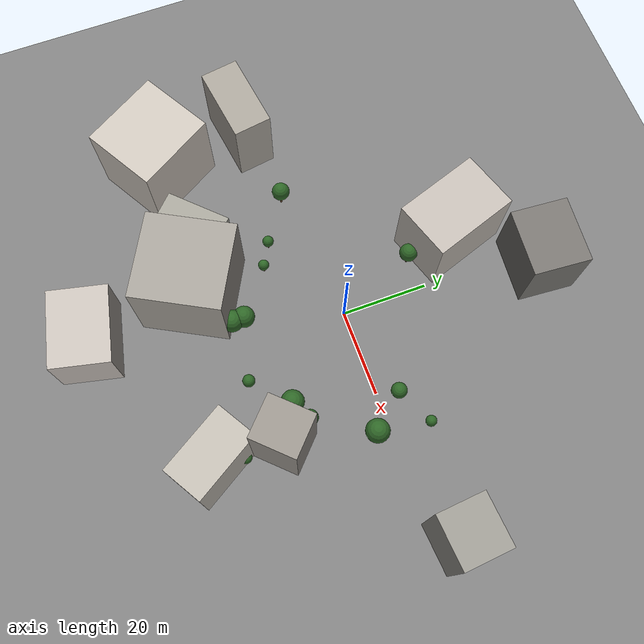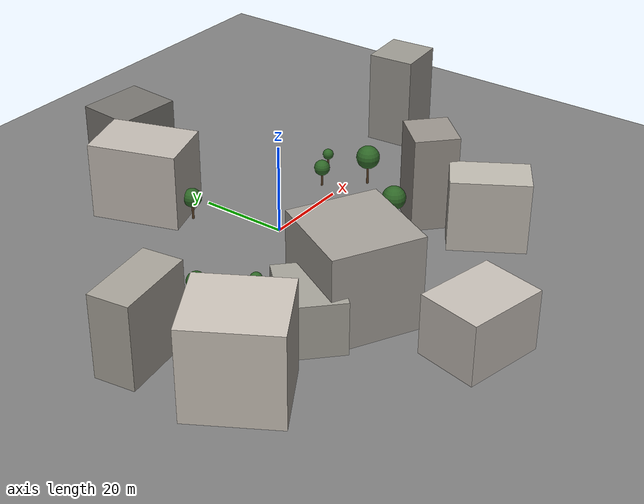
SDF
<sdf version="1.9">
 <world name="ecps295_lowbox_s19">
  <model name="ground_plane">
   <static>true</static>
   <link name="link">
    <collision name="collision">
     <geometry><plane><normal>0 0 1</normal><size>50 50</size></plane></geometry>
    </collision>
    <visual name="visual">
     <geometry><plane><normal>0 0 1</normal><size>50 50</size></plane></geometry>
     <material><ambient>0.5 0.5 0.5 1</ambient><diffuse>0.5 0.5 0.5 1</diffuse></material>
    </visual>
   </link>
  </model>
  <model name="scenery">
   <static>true</static>
   <link name="link">
    <visual name="bldg0">
     <pose>3.500 46.194 8.006 0 0 1.4952</pose>
     <geometry><box><size>13.179 15.247 16.012</size></box></geometry>
     <material><ambient>0.47 0.46 0.44 1</ambient><diffuse>0.47 0.46 0.44 1</diffuse></material>
    </visual>
    <visual name="bldg1">
     <pose>54.936 4.556 10.965 0 0 0.0827</pose>
     <geometry><box><size>11.631 10.812 21.930</size></box></geometry>
     <material><ambient>0.61 0.60 0.57 1</ambient><diffuse>0.61 0.60 0.57 1</diffuse></material>
    </visual>
    <visual name="bldg2">
     <pose>22.895 -37.914 8.079 0 0 5.2556</pose>
     <geometry><box><size>16.947 9.807 16.158</size></box></geometry>
     <material><ambient>0.75 0.73 0.69 1</ambient><diffuse>0.75 0.73 0.69 1</diffuse></material>
    </visual>
    <visual name="bldg3">
     <pose>-51.684 -7.582 9.066 0 0 3.2872</pose>
     <geometry><box><size>17.400 8.768 18.132</size></box></geometry>
     <material><ambient>0.66 0.64 0.60 1</ambient><diffuse>0.66 0.64 0.60 1</diffuse></material>
    </visual>
    <visual name="bldg4">
     <pose>-9.792 29.339 8.751 0 0 1.8929</pose>
     <geometry><box><size>20.117 13.673 17.501</size></box></geometry>
     <material><ambient>0.76 0.73 0.70 1</ambient><diffuse>0.76 0.73 0.70 1</diffuse></material>
    </visual>
    <visual name="bldg5">
     <pose>-12.880 -56.175 6.557 0 0 4.4870</pose>
     <geometry><box><size>13.529 17.611 13.114</size></box></geometry>
     <material><ambient>0.78 0.75 0.72 1</ambient><diffuse>0.78 0.75 0.72 1</diffuse></material>
    </visual>
    <visual name="bldg6">
     <pose>23.839 -22.708 10.724 0 0 5.5221</pose>
     <geometry><box><size>9.904 10.604 21.448</size></box></geometry>
     <material><ambient>0.60 0.58 0.55 1</ambient><diffuse>0.60 0.58 0.55 1</diffuse></material>
    </visual>
    <visual name="bldg7">
     <pose>-27.312 -27.883 5.807 0 0 3.9373</pose>
     <geometry><box><size>15.101 12.630 11.615</size></box></geometry>
     <material><ambient>0.65 0.64 0.60 1</ambient><diffuse>0.65 0.64 0.60 1</diffuse></material>
    </visual>
    <visual name="bldg8">
     <pose>-49.307 -28.848 9.851 0 0 3.6710</pose>
     <geometry><box><size>17.548 19.147 19.702</size></box></geometry>
     <material><ambient>0.80 0.77 0.73 1</ambient><diffuse>0.80 0.77 0.73 1</diffuse></material>
    </visual>
    <visual name="bldg9">
     <pose>-16.565 -30.710 10.238 0 0 4.2177</pose>
     <geometry><box><size>20.049 19.576 20.475</size></box></geometry>
     <material><ambient>0.65 0.63 0.60 1</ambient><diffuse>0.65 0.63 0.60 1</diffuse></material>
    </visual>
    <visual name="trunk0">
     <pose>-5.10 -22.06 2.45 0 0 0</pose>
     <geometry><cylinder><radius>0.25</radius><length>4.89</length></cylinder></geometry>
     <material><ambient>0.35 0.25 0.15 1</ambient><diffuse>0.35 0.25 0.15 1</diffuse></material>
    </visual>
    <visual name="crown0">
     <pose>-5.10 -22.06 6.12 0 0 0</pose>
     <geometry><sphere><radius>2.45</radius></sphere></geometry>
     <material><ambient>0.18 0.4 0.15 1</ambient><diffuse>0.18 0.4 0.15 1</diffuse></material>
    </visual>
    <visual name="trunk1">
     <pose>-21.72 -10.82 1.30 0 0 0</pose>
     <geometry><cylinder><radius>0.25</radius><length>2.59</length></cylinder></geometry>
     <material><ambient>0.35 0.25 0.15 1</ambient><diffuse>0.35 0.25 0.15 1</diffuse></material>
    </visual>
    <visual name="crown1">
     <pose>-21.72 -10.82 3.24 0 0 0</pose>
     <geometry><sphere><radius>1.30</radius></sphere></geometry>
     <material><ambient>0.18 0.4 0.15 1</ambient><diffuse>0.18 0.4 0.15 1</diffuse></material>
    </visual>
    <visual name="trunk2">
     <pose>24.17 -31.59 1.33 0 0 0</pose>
     <geometry><cylinder><radius>0.25</radius><length>2.67</length></cylinder></geometry>
     <material><ambient>0.35 0.25 0.15 1</ambient><diffuse>0.35 0.25 0.15 1</diffuse></material>
    </visual>
    <visual name="crown2">
     <pose>24.17 -31.59 3.33 0 0 0</pose>
     <geometry><sphere><radius>1.33</radius></sphere></geometry>
     <material><ambient>0.18 0.4 0.15 1</ambient><diffuse>0.18 0.4 0.15 1</diffuse></material>
    </visual>
    <visual name="trunk3">
     <pose>8.45 -25.68 1.43 0 0 0</pose>
     <geometry><cylinder><radius>0.25</radius><length>2.85</length></cylinder></geometry>
     <material><ambient>0.35 0.25 0.15 1</ambient><diffuse>0.35 0.25 0.15 1</diffuse></material>
    </visual>
    <visual name="crown3">
     <pose>8.45 -25.68 3.57 0 0 0</pose>
     <geometry><sphere><radius>1.43</radius></sphere></geometry>
     <material><ambient>0.18 0.4 0.15 1</ambient><diffuse>0.18 0.4 0.15 1</diffuse></material>
    </visual>
    <visual name="trunk4">
     <pose>-9.51 33.59 2.51 0 0 0</pose>
     <geometry><cylinder><radius>0.25</radius><length>5.02</length></cylinder></geometry>
     <material><ambient>0.35 0.25 0.15 1</ambient><diffuse>0.35 0.25 0.15 1</diffuse></material>
    </visual>
    <visual name="crown4">
     <pose>-9.51 33.59 6.27 0 0 0</pose>
     <geometry><sphere><radius>2.51</radius></sphere></geometry>
     <material><ambient>0.18 0.4 0.15 1</ambient><diffuse>0.18 0.4 0.15 1</diffuse></material>
    </visual>
    <visual name="trunk5">
     <pose>30.31 8.64 1.27 0 0 0</pose>
     <geometry><cylinder><radius>0.25</radius><length>2.53</length></cylinder></geometry>
     <material><ambient>0.35 0.25 0.15 1</ambient><diffuse>0.35 0.25 0.15 1</diffuse></material>
    </visual>
    <visual name="crown5">
     <pose>30.31 8.64 3.17 0 0 0</pose>
     <geometry><sphere><radius>1.27</radius></sphere></geometry>
     <material><ambient>0.18 0.4 0.15 1</ambient><diffuse>0.18 0.4 0.15 1</diffuse></material>
    </visual>
    <visual name="trunk6">
     <pose>-4.98 -24.79 2.52 0 0 0</pose>
     <geometry><cylinder><radius>0.25</radius><length>5.04</length></cylinder></geometry>
     <material><ambient>0.35 0.25 0.15 1</ambient><diffuse>0.35 0.25 0.15 1</diffuse></material>
    </visual>
    <visual name="crown6">
     <pose>-4.98 -24.79 6.30 0 0 0</pose>
     <geometry><sphere><radius>2.52</radius></sphere></geometry>
     <material><ambient>0.18 0.4 0.15 1</ambient><diffuse>0.18 0.4 0.15 1</diffuse></material>
    </visual>
    <visual name="trunk7">
     <pose>28.90 -3.53 2.70 0 0 0</pose>
     <geometry><cylinder><radius>0.25</radius><length>5.40</length></cylinder></geometry>
     <material><ambient>0.35 0.25 0.15 1</ambient><diffuse>0.35 0.25 0.15 1</diffuse></material>
    </visual>
    <visual name="crown7">
     <pose>28.90 -3.53 6.74 0 0 0</pose>
     <geometry><sphere><radius>2.70</radius></sphere></geometry>
     <material><ambient>0.18 0.4 0.15 1</ambient><diffuse>0.18 0.4 0.15 1</diffuse></material>
    </visual>
    <visual name="trunk8">
     <pose>-7.21 18.33 2.10 0 0 0</pose>
     <geometry><cylinder><radius>0.25</radius><length>4.20</length></cylinder></geometry>
     <material><ambient>0.35 0.25 0.15 1</ambient><diffuse>0.35 0.25 0.15 1</diffuse></material>
    </visual>
    <visual name="crown8">
     <pose>-7.21 18.33 5.25 0 0 0</pose>
     <geometry><sphere><radius>2.10</radius></sphere></geometry>
     <material><ambient>0.18 0.4 0.15 1</ambient><diffuse>0.18 0.4 0.15 1</diffuse></material>
    </visual>
    <visual name="trunk9">
     <pose>21.91 4.38 1.81 0 0 0</pose>
     <geometry><cylinder><radius>0.25</radius><length>3.62</length></cylinder></geometry>
     <material><ambient>0.35 0.25 0.15 1</ambient><diffuse>0.35 0.25 0.15 1</diffuse></material>
    </visual>
    <visual name="crown9">
     <pose>21.91 4.38 4.53 0 0 0</pose>
     <geometry><sphere><radius>1.81</radius></sphere></geometry>
     <material><ambient>0.18 0.4 0.15 1</ambient><diffuse>0.18 0.4 0.15 1</diffuse></material>
    </visual>
    <visual name="trunk10">
     <pose>-16.48 -13.71 1.26 0 0 0</pose>
     <geometry><cylinder><radius>0.25</radius><length>2.53</length></cylinder></geometry>
     <material><ambient>0.35 0.25 0.15 1</ambient><diffuse>0.35 0.25 0.15 1</diffuse></material>
    </visual>
    <visual name="crown10">
     <pose>-16.48 -13.71 3.16 0 0 0</pose>
     <geometry><sphere><radius>1.26</radius></sphere></geometry>
     <material><ambient>0.18 0.4 0.15 1</ambient><diffuse>0.18 0.4 0.15 1</diffuse></material>
    </visual>
    <visual name="trunk11">
     <pose>16.79 -18.39 2.64 0 0 0</pose>
     <geometry><cylinder><radius>0.25</radius><length>5.28</length></cylinder></geometry>
     <material><ambient>0.35 0.25 0.15 1</ambient><diffuse>0.35 0.25 0.15 1</diffuse></material>
    </visual>
    <visual name="crown11">
     <pose>16.79 -18.39 6.59 0 0 0</pose>
     <geometry><sphere><radius>2.64</radius></sphere></geometry>
     <material><ambient>0.18 0.4 0.15 1</ambient><diffuse>0.18 0.4 0.15 1</diffuse></material>
    </visual>
    <visual name="trunk12">
     <pose>20.96 -15.91 1.89 0 0 0</pose>
     <geometry><cylinder><radius>0.25</radius><length>3.78</length></cylinder></geometry>
     <material><ambient>0.35 0.25 0.15 1</ambient><diffuse>0.35 0.25 0.15 1</diffuse></material>
    </visual>
    <visual name="crown12">
     <pose>20.96 -15.91 4.73 0 0 0</pose>
     <geometry><sphere><radius>1.89</radius></sphere></geometry>
     <material><ambient>0.18 0.4 0.15 1</ambient><diffuse>0.18 0.4 0.15 1</diffuse></material>
    </visual>
    <visual name="trunk13">
     <pose>-31.91 -4.05 2.09 0 0 0</pose>
     <geometry><cylinder><radius>0.25</radius><length>4.19</length></cylinder></geometry>
     <material><ambient>0.35 0.25 0.15 1</ambient><diffuse>0.35 0.25 0.15 1</diffuse></material>
    </visual>
    <visual name="crown13">
     <pose>-31.91 -4.05 5.23 0 0 0</pose>
     <geometry><sphere><radius>2.09</radius></sphere></geometry>
     <material><ambient>0.18 0.4 0.15 1</ambient><diffuse>0.18 0.4 0.15 1</diffuse></material>
    </visual>
   </link>
  </model>
 </world>
</sdf>
